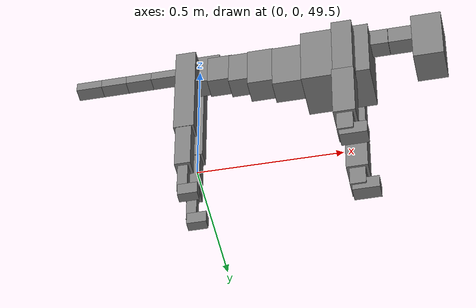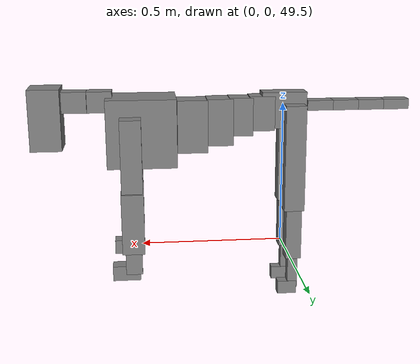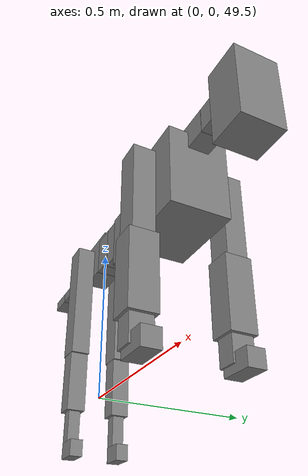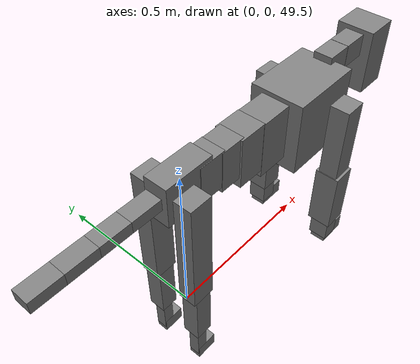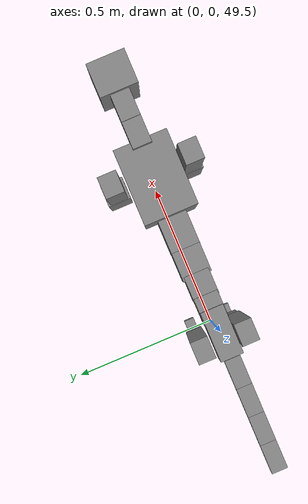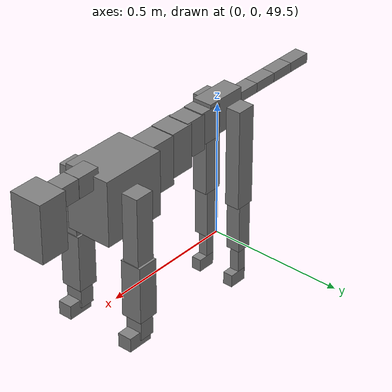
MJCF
<mujoco model="dog">

    <default>
        <joint armature="0.02" stiffness="1" damping="0.2" limited="true"/>
        <geom condim="3" friction="1 0.05 0.05" margin="0.01"/>
        <motor ctrllimited="true" ctrlrange="-1.0 1.0" forcelimited="true" gear="50"/>
    </default>

    <compiler inertiafromgeom="true" angle="radian"/>

    <option timestep="0.016" iterations="50" tolerance="1e-10" solver="Newton" jacobian="dense" cone="pyramidal"/>

    <size nconmax="20000" njmax="60000" nstack="5000000"/>
    <visual>
        <map force="0.1" zfar="30"/>
        <rgba haze="0.15 0.25 0.35 1"/>
        <quality shadowsize="2048"/>
        <global offwidth="800" offheight="800"/>
    </visual>

    <asset>
        <texture type="skybox" builtin="gradient" rgb1="0.3 0.5 0.7" rgb2="0 0 0" width="512" height="512"/>
        <texture name="texplane" type="2d" builtin="checker" rgb1=".2 .3 .4" rgb2=".1 0.15 0.2" width="512" height="512"
                 mark="cross" markrgb=".8 .8 .8"/>
        <texture name="texgeom" type="cube" builtin="flat" mark="cross" width="127" height="1278" rgb1="0.8 0.6 0.4"
                 rgb2="0.8 0.6 0.4" markrgb="1 1 1" random="0.01"/>

        <material name="matplane" reflectance="0.3" texture="texplane" texrepeat="1 1" texuniform="true"/>
        <material name="matgeom" texture="texgeom" texuniform="true" rgba="0.8 0.6 .4 1"/>
    </asset>

    <worldbody>
        <geom name="floor" pos="0 0 0" size="0 0 .25" type="plane" material="matplane" condim="3"/>

        <light directional="false" diffuse=".2 .2 .2" specular="0 0 0" pos="0 0 5" dir="0 0 -1" castshadow="false"/>
        <light mode="targetbodycom" target="torso" directional="false" diffuse=".8 .8 .8" specular="0.3 0.3 0.3"
               pos="0 0 4.0" dir="0 0 -1"/>

        <body name="root" pos="0 0 50">
            <freejoint name="root_1"/>
            <geom type="box" pos="0 0 -0.02" size="0.0774  0.0358  0.063" density="2030"/>

            <body name="spine1" pos="0.054 0 0">
                <joint name="spine1_y" axis="0 1 0" range="0 0.7" limited="true"/>
                <geom type="box" pos="0.02375 0 -0.03" size="0.04375  0.0375  0.05985" density="2030"/>

                <body name="spine2" pos="0.0612 0 0">
                    <joint name="spine2_y" axis="0 1 0" range="-0.15 0.15" limited="true"/>
                    <geom type="box" pos="0.03555  0  -0.04" size="0.04055  0.039  0.06615" density="2030"/>

                    <body name="spine3" pos="0.0730 0 0">
                        <joint name="spine3_y" axis="0 1 0" range="-0.15 0.15" limited="true"/>
                        <geom type="box" pos="0.03555  0  -0.057" size="0.04555  0.0445  0.081" density="2030"/>

                        <body name="spine4" pos="0.0780 0 0">
                            <joint name="spine4_y" axis="0 1 0" range="-0.15 0.15" limited="true"/>
                            <geom type="box" pos="0.05265  0  -0.07" size="0.05265  0.045  0.09135" density="2030"/>

                            <body name="torso" pos="0.1082 0 0">
                                <joint name="torso_y" axis="0 1 0" range="-0.15 0.15" limited="true"/>
                                <geom type="box" pos="0.11925  0  -0.085" size="0.11925  0.085  0.11745"
                                      density="2030"/>

                                <body name="neck1" pos="0.2160  0   0.0180">
                                    <joint name="neck1_y" axis="0 1 0" range="-1.2  -1" limited="true"/>
                                    <geom type="box" pos="0.0423  0  0" size="0.0423  0.03  0.036" density="2325"/>

                                    <body name="neck2" pos="0.0853  0  0">
                                        <joint name="neck2_y" axis="0 1 0" range="0.1  0" limited="true"/>
                                        <geom type="box" pos="0.0423  0  0" size="0.0423  0.03  0.036" density="2325"/>

                                        <body name="head" pos="0.0853  0  0">
                                            <joint name="head_y" axis="0 1 0" range="-0.3  -0.2" limited="true"/>
                                            <geom type="box" pos="0.0531  0  -0.055" size="0.0531  0.06  0.1044"
                                                  density="4030"/>

                                        </body>
                                    </body>
                                </body>

                                <body name="front_shoulder" pos="0.156  0   -0.0480">
                                    <joint name="front_shoulder_y" axis="0 1 0" range="-1 1.5" limited="true"/>
                                    <geom type="box" pos="0 0.13 -0.1106" size="0.0354  0.0303  0.1373" density="1158"/>
                                    <geom type="box" pos="0 -0.13 -0.1106" size="0.0354  0.0303  0.1373"
                                          density="1158"/>

                                    <body name="front_elbow" pos="0  0  -0.2213">
                                        <joint name="front_elbow_y" axis="0 1 0" range="-2 0" limited="true"/>
                                        <geom type="box" pos="0 0.13 -0.1047" size="0.0378  0.0387  0.1047"
                                              density="1081"/>
                                        <geom type="box" pos="0 -0.13 -0.1047" size="0.0378  0.0387  0.1047"
                                              density="1081"/>

                                        <body name="front_wrist" pos="0  0  -0.2093">
                                            <joint name="front_wrist_y" axis="0 1 0" range="-0.2 0" limited="true"/>
                                            <geom type="box" pos="0 0.13 -0.0309" size="0.0278  0.0309  0.0441"
                                                  density="1664"/>
                                            <geom type="box" pos="0 -0.13 -0.0309" size="0.0278  0.0309  0.0441"
                                                  density="1664"/>

                                            <body name="front_finger_end" pos="0  0  -0.0618">
                                                <joint name="front_finger_y" axis="0 1 0" range="-0.4 1"
                                                       limited="true"/>
                                                <geom type="box" pos="0.0256  0.13  -0.0105"
                                                      size="0.0470  0.0256  0.0255" density="1515"/>
                                                <geom type="box" pos="0.0256  -0.13  -0.0105"
                                                      size="0.0470  0.0256  0.0255" density="1515"/>

                                            </body>

                                        </body>
                                    </body>
                                </body>

                            </body>
                        </body>
                    </body>
                </body>
            </body>

            <body name="back_hip" pos="-0.03 0 -0.018">
                <joint name="back_hip_y" axis="0 1 0" range="-1.5 0.3" limited="true"/>
                <geom type="box" pos="0 0.07 -0.1626" size="0.0353  0.0277  0.1854" density="1154"/>
                <geom type="box" pos="0 -0.07 -0.1626" size="0.0353  0.0277  0.1854" density="1154"/>

                <body name="back_knee" pos="0  0  -0.3252">
                    <joint name="back_knee_y" axis="0 1 0" range="0 2.8" limited="true"/>
                    <geom type="box" pos="0 0.07 -0.0921" size="0.0273  0.0269  0.1077" density="1227"/>
                    <geom type="box" pos="0 -0.07 -0.0921" size="0.0273  0.0269  0.1077" density="1227"/>

                    <body name="back_ankle" pos="0  0  -0.1843">
                        <joint name="back_ankle_y" axis="0 1 0" range="-2.2 0" limited="true"/>
                        <geom type="box" pos="0 0.07 -0.0597" size="0.0174  0.0174  0.0709" density="1284"/>
                        <geom type="box" pos="0 -0.07 -0.0597" size="0.0174  0.0174  0.0709" density="1284"/>

                        <body name="back_toe_end" pos="0  0  -0.1194">
                            <joint name="back_toe_y" axis="0 1 0" range="-0.4 1" limited="true"/>
                            <geom type="box" pos="0.0183  0.07  -0.0083" size="0.0336  0.0183  0.0233" density="1515"/>
                            <geom type="box" pos="0.0183  -0.07  -0.0083" size="0.0336  0.0183  0.0233" density="1515"/>

                        </body>
                    </body>
                </body>
            </body>

            <body name="tail1" pos="-0.074 0 -0.006">
                <joint name="tail1_y" axis="0 1 0" range="-0.2 0.2" limited="true"/>
                <geom type="box" pos="-0.0536  0  0" size="0.045  0.025  0.0175" density="1587"/>

                <body name="tail2" pos="-0.09 0 0">
                    <joint name="tail2_y" axis="0 1 0" range="-0.2 0.2" limited="true"/>
                    <geom type="box" pos="-0.0536  0  0" size="0.045  0.025  0.0175" density="1587"/>

                    <body name="tail3" pos="-0.09 0 0">
                        <joint name="tail3_y" axis="0 1 0" range="-0.2 0.2" limited="true"/>
                        <geom type="box" pos="-0.0536  0  0" size="0.045  0.025  0.0175" density="1587"/>

                        <body name="tail4" pos="-0.09 0 0">
                            <joint name="tail4_y" axis="0 1 0" range="-0.2 0.2" limited="true"/>
                            <geom type="box" pos="-0.0536  0  0" size="0.045  0.025  0.0175" density="1587"/>

                        </body>
                    </body>
                </body>
            </body>
        </body>
    </worldbody>

    <actuator>
        <motor joint="spine1_y" forcerange="-150 150     "/>
        <motor joint="spine2_y" forcerange="-150 150     "/>
        <motor joint="spine3_y" forcerange="-150 150     "/>
        <motor joint="spine4_y" forcerange="-150 150     "/>
        <motor joint="torso_y" forcerange="-150 150     "/>
        <motor joint="neck1_y" forcerange="-100 100       "/>
        <motor joint="neck2_y" forcerange="-100 100       "/>
        <motor joint="head_y" forcerange="-150 150       "/>
        <motor joint="front_shoulder_y" forcerange="-104.00 197.70"/>
        <motor joint="front_elbow_y" forcerange="-198.51 182.75"/>
        <motor joint="front_wrist_y" forcerange="-115.59 131.24"/>
        <motor joint="front_finger_y" forcerange="-59.76 36.96"/>
        <motor joint="back_hip_y" forcerange="-246.96 321.74"/>
        <motor joint="back_knee_y" forcerange="-208.55 382.65"/>
        <motor joint="back_angle_y" forcerange="-121.56 57.04"/>
        <motor joint="back_toe_y" forcerange="-45.23 21.50"/>
        <motor joint="tail1_y" forcerange="-50 50     "/>
        <motor joint="tail2_y" forcerange="-50 50     "/>
        <motor joint="tail3_y" forcerange="-50 50     "/>
        <motor joint="tail4_y" forcerange="-50 50     "/>
    </actuator>
</mujoco>
